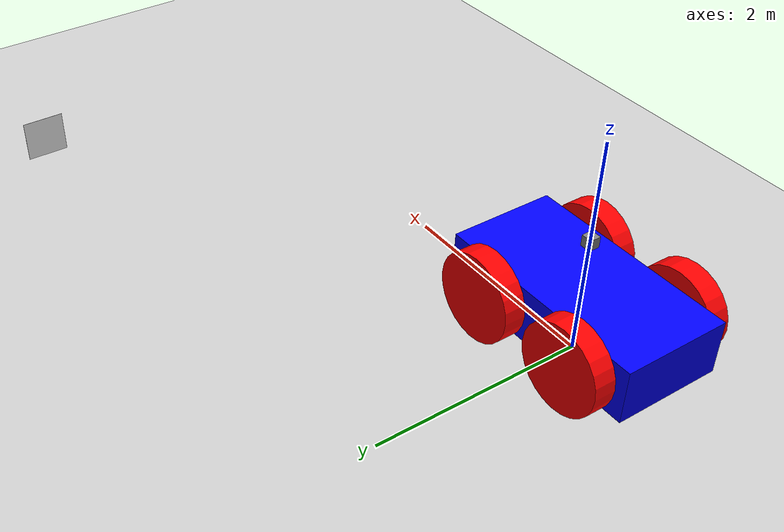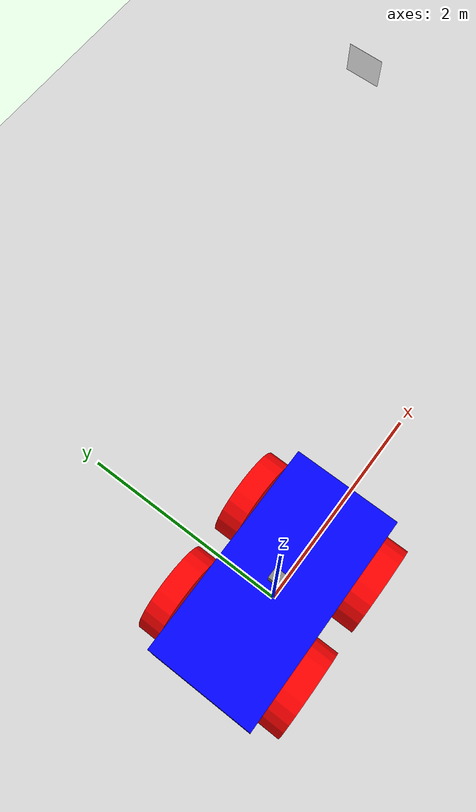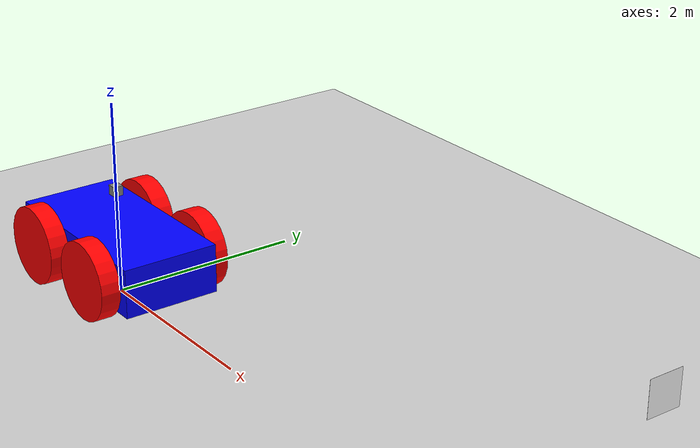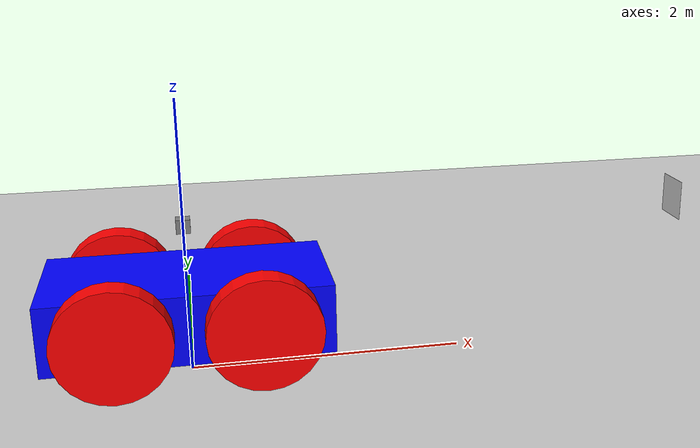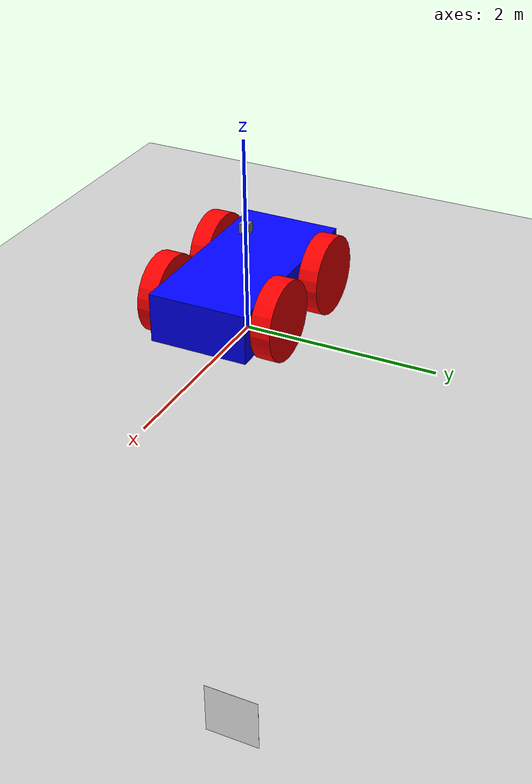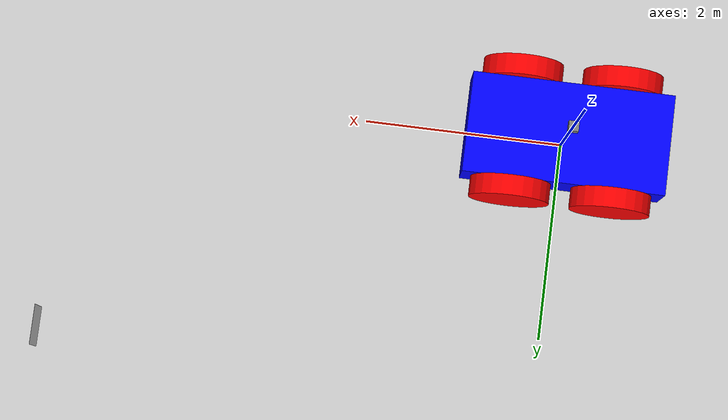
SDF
<sdf version="1.10">
 <world name="simulacia">
  <physics name="1ms" type="ignored">
   <max_step_size>0.001</max_step_size>
   <real_time_factor>1.0</real_time_factor>
  </physics>
  <plugin filename="gz-sim-physics-system" name="gz::sim::systems::Physics"/>
  <plugin filename="gz-sim-user-commands-system" name="gz::sim::systems::UserCommands"/>
  <plugin filename="gz-sim-scene-broadcaster-system" name="gz::sim::systems::SceneBroadcaster"/>
  <light type="directional" name="slnko">
   <pose>0 0 10 0 0 0</pose>
   <diffuse>0.8 0.8 0.8 1</diffuse>
   <specular>0.2 0.2 0.2 1</specular>
   <attenuation>
    <range>1000</range>
    <constant>0.9</constant>
    <linear>0.01</linear>
    <quadratic>0.001</quadratic>
   </attenuation>
   <direction>0.7 0.1 -0.9</direction>
  </light>
  <model name="rovina_zeme">
   <static>true</static>
   <link name="link">
    <collision name="collision"><geometry><plane><normal>0 0 1</normal></plane></geometry></collision>
    <visual name="visual">
     <geometry><plane><normal>0 0 1</normal><size>100 100</size></plane></geometry>
     <material>
      <ambient>0.8 0.8 0.8 1</ambient>
      <diffuse>0.8 0.8 0.8 1</diffuse>
      <specular>0.8 0.8 0.8 1</specular>
     </material>
    </visual>
   </link>
  </model>
  <model name="aruco_marker">
   <static>true</static>
   <pose>5 2.5 0.3 0 1.5707 0</pose>
   <link name="link">
    <visual name="visual">
     <geometry><box><size>0.4 0.4 0.001</size></box></geometry>
     <material>
      <ambient>1 1 1 1</ambient>
      <diffuse>1 1 1 1</diffuse>
      <specular>0 0 0 1</specular>
      <emissive>0 0 0 1</emissive>
      <pbr>
       <metal>
        <albedo_map>file://resource/marker_0.png</albedo_map>
        <roughness>0.0</roughness>
        <metalness>0.0</metalness>
       </metal>
      </pbr>
     </material>
    </visual>
   </link>
  </model>
  <include><pose>0 0 0.5 0 0 0</pose><uri>model://mobilny_robot</uri></include>
 </world>
</sdf>

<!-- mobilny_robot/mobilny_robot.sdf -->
<sdf version="1.10">

    <model name="wave_rover_4wd" canonical_link="telo">
        <!-- Telo robota -->
        <link name="telo">
            <collision name="collision">
                <geometry>
                    <box><size>2.0 1.0 0.5</size></box>
                </geometry>
            </collision>
            <visual name="visual">
                <geometry>
                   <box><size>2.0 1.0 0.5</size></box>
                </geometry>
                <material>
                    <ambient>0.0 0.0 1.0 1</ambient>
                    <diffuse>0.0 0.0 1.0 1</diffuse>
                    <specular>0.0 0.0 1.0 1</specular>
                </material>
            </visual>
        </link>

        <!-- Zadné ľavé koleso -->
        <link name="zadne_lave_koleso">
            <pose relative_to="telo">-0.5 0.6 0 -1.5707 0 0</pose>
            <collision name="collision">
                <geometry>
                    <cylinder><radius>0.4</radius><length>0.2</length></cylinder>
                </geometry>
            </collision>
            <visual name="visual">
                <geometry>
                   <cylinder><radius>0.4</radius><length>0.2</length></cylinder>
                </geometry>
                <material>
                    <ambient>1.0 0.0 0.0 1</ambient>
                    <diffuse>1.0 0.0 0.0 1</diffuse>
                    <specular>1.0 0.0 0.0 1</specular>
                </material>
            </visual>
        </link>

        <joint name="zadne_lave_koleso_zaves" type="revolute">
            <pose relative_to="zadne_lave_koleso"/>
            <parent>telo</parent>
            <child>zadne_lave_koleso</child>
            <axis>
                <xyz expressed_in="__model__">0 1 0</xyz>
                <limit>
                    <lower>-1.79769e+308</lower>
                    <upper>1.79769e+308</upper>
                </limit>
            </axis>
        </joint>

        <!-- Zadné pravé koleso -->
        <link name="zadne_prave_koleso">
            <pose relative_to="telo">-0.5 -0.6 0 -1.5707 0 0</pose>
            <collision name="collision">
                <geometry>
                    <cylinder><radius>0.4</radius><length>0.2</length></cylinder>
                </geometry>
            </collision>
            <visual name="visual">
                <geometry>
                   <cylinder><radius>0.4</radius><length>0.2</length></cylinder>
                </geometry>
                <material>
                    <ambient>1.0 0.0 0.0 1</ambient>
                    <diffuse>1.0 0.0 0.0 1</diffuse>
                    <specular>1.0 0.0 0.0 1</specular>
                </material>
            </visual>
        </link>

        <joint name="zadne_prave_koleso_zaves" type="revolute">
            <pose relative_to="zadne_prave_koleso"/>
            <parent>telo</parent>
            <child>zadne_prave_koleso</child>
            <axis>
                <xyz expressed_in="__model__">0 1 0</xyz>
                <limit>
                    <lower>-1.79769e+308</lower>
                    <upper>1.79769e+308</upper>
                </limit>
            </axis>
        </joint>

        <!-- Predné ľavé koleso -->
        <link name="predne_lave_koleso">
            <pose relative_to="telo">0.5 0.6 0 -1.5707 0 0</pose>
            <collision name="collision">
                <geometry>
                    <cylinder><radius>0.4</radius><length>0.2</length></cylinder>
                </geometry>
            </collision>
            <visual name="visual">
                <geometry>
                   <cylinder><radius>0.4</radius><length>0.2</length></cylinder>
                </geometry>
                <material>
                    <ambient>1.0 0.0 0.0 1</ambient>
                    <diffuse>1.0 0.0 0.0 1</diffuse>
                    <specular>1.0 0.0 0.0 1</specular>
                </material>
            </visual>
        </link>

        <joint name="predne_lave_koleso_zaves" type="revolute">
            <pose relative_to="predne_lave_koleso"/>
            <parent>telo</parent>
            <child>predne_lave_koleso</child>
            <axis>
                <xyz expressed_in="__model__">0 1 0</xyz>
                <limit>
                    <lower>-1.79769e+308</lower>
                    <upper>1.79769e+308</upper>
                </limit>
            </axis>
        </joint>

        <!-- Predné pravé koleso -->
        <link name="predne_prave_koleso">
            <pose relative_to="telo">0.5 -0.6 0 -1.5707 0 0</pose>
            <collision name="collision">
                <geometry>
                    <cylinder><radius>0.4</radius><length>0.2</length></cylinder>
                </geometry>
            </collision>
            <visual name="visual">
                <geometry>
                   <cylinder><radius>0.4</radius><length>0.2</length></cylinder>
                </geometry>
                <material>
                    <ambient>1.0 0.0 0.0 1</ambient>
                    <diffuse>1.0 0.0 0.0 1</diffuse>
                    <specular>1.0 0.0 0.0 1</specular>
                </material>
            </visual>
        </link>

        <joint name="predne_prave_koleso_zaves" type="revolute">
            <pose relative_to="predne_prave_koleso"/>
            <parent>telo</parent>
            <child>predne_prave_koleso</child>
            <axis>
                <xyz expressed_in="__model__">0 1 0</xyz>
                <limit>
                    <lower>-1.79769e+308</lower>
                    <upper>1.79769e+308</upper>
                </limit>
            </axis>
        </joint>

        <!-- Kamera -->

        <link name="camera_base">
            <pose relative_to="telo">0 0 0.6 0 0 0</pose>
            <collision name="collision">
                <geometry>
                    <box><size>0.05 0.05 0.05</size></box>
                </geometry>
            </collision>
            <visual name="visual">
                <geometry>
                   <box><size>0.1 0.1 0.1</size></box>
                </geometry>
                <material>
                    <ambient>0.5 0.5 0.5 1</ambient>
                    <diffuse>0.5 0.5 0.5 1</diffuse>
                    <specular>0.5 0.5 0.5 1</specular>
                </material>
            </visual>

            <sensor name="camera" type="camera">
                <pose>0 0 0 0 0 0</pose>
                <camera>
                    <horizontal_fov>1.047</horizontal_fov>
                    <image>
                        <width>640</width>
                        <height>480</height>
                        <format>R8G8B8</format>
                    </image>
                    <clip>
                        <near>0.1</near>
                        <far>100</far>
                    </clip>
                    <distortion>
                        <k1>1.578758331993112829e-01</k1>
                        <k2>-5.784303605943902360e-01</k2>
                        <k3>-8.740723680089258069e-03</k3>
                        <p1>1.359451618091441112e-03</p1>
                        <p2>1.640043376158566713e-01</p2>
                        <center>0.5 0.5</center>
                    </distortion>
                    <lens>
                        <type>pinhole</type>
                        <scale_to_hfov>false</scale_to_hfov>
                        <intrinsics>
                            <fx>4.970870507466349295e+02</fx>
                            <fy>4.976011127668800782e+02</fy>
                            <cx>3.168387473166100108e+02</cx>
                            <cy>2.342740555042151982e+02</cy>
                        <s>0.0</s>
                        </intrinsics>
                    </lens>
                </camera>
                <always_on>1</always_on>
                <update_rate>30</update_rate>
                <visualize>true</visualize>
                <topic>camera/image</topic>
            </sensor>
        </link>

        <joint name="camera_base_joint" type="fixed">
            <parent>telo</parent>
            <child>camera_base</child>
        </joint>

        <!-- Pluginy -->
        <plugin filename="gz-sim-sensors-system" name="gz::sim::systems::Sensors">
            <render_engine>ogre2</render_engine>
        </plugin>

        <plugin filename="gz-sim-diff-drive-system" name="gz::sim::systems::DiffDrive">
            <left_joint>zadne_lave_koleso_zaves</left_joint>
            <right_joint>zadne_prave_koleso_zaves</right_joint>
            <left_joint>predne_lave_koleso_zaves</left_joint>
            <right_joint>predne_prave_koleso_zaves</right_joint>
            <wheel_separation>1.2</wheel_separation>
            <wheel_radius>0.4</wheel_radius>
            <odom_publish_frequency>1</odom_publish_frequency>
            <topic>cmd_vel</topic>
            <odom_topic>odom</odom_topic>
            <tf_topic>tf</tf_topic>
            <frame_id>odom</frame_id>
            <child_frame_id>telo</child_frame_id>
        </plugin>

        <plugin filename="gz-sim-joint-state-publisher-system"
            name="gz::sim::systems::JointStatePublisher">
            <topic>joint_states</topic>
             <publish_frequency>1</publish_frequency>
            <joint_name>zadne_lave_koleso_zaves</joint_name>
            <joint_name>zadne_prave_koleso_zaves</joint_name>
            <joint_name>predne_lave_koleso_zaves</joint_name>
            <joint_name>predne_prave_koleso_zaves</joint_name>
            <joint_name>camera_base_joint</joint_name>
        </plugin>

        <plugin filename="gz-sim-pose-publisher-system"
                name="gz::sim::systems::PosePublisher">
            <publish_link_pose>true</publish_link_pose>
            <publish_model_pose>true</publish_model_pose>
            <publish_nested_model_pose>true</publish_nested_model_pose>
            <use_sim_time>true</use_sim_time>
            <topic>/tf</topic>
        </plugin>

    </model>
</sdf>
